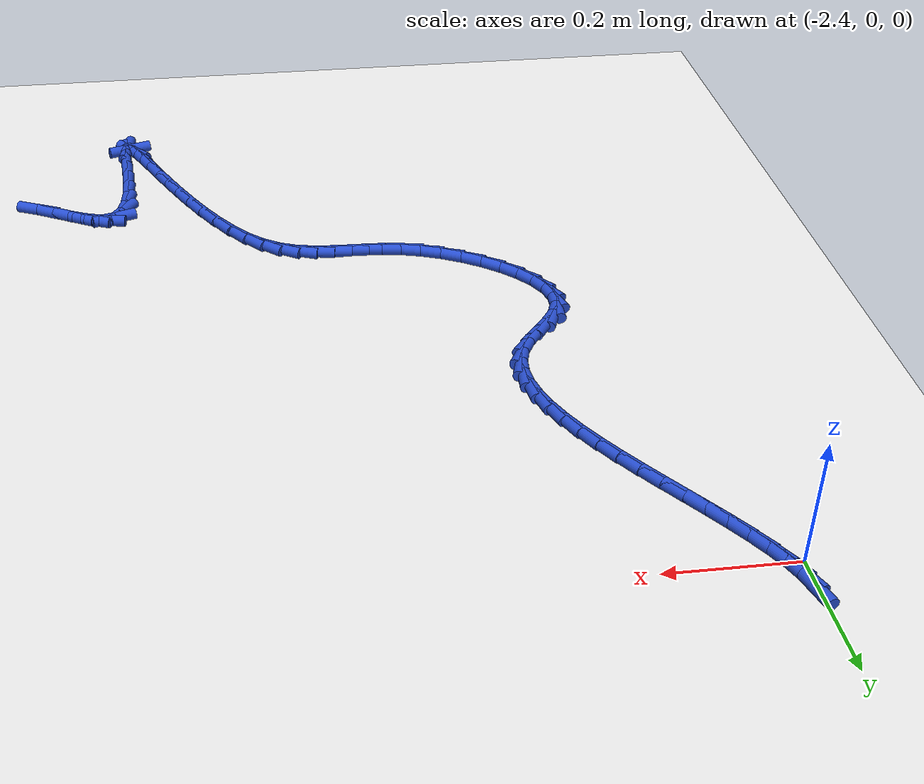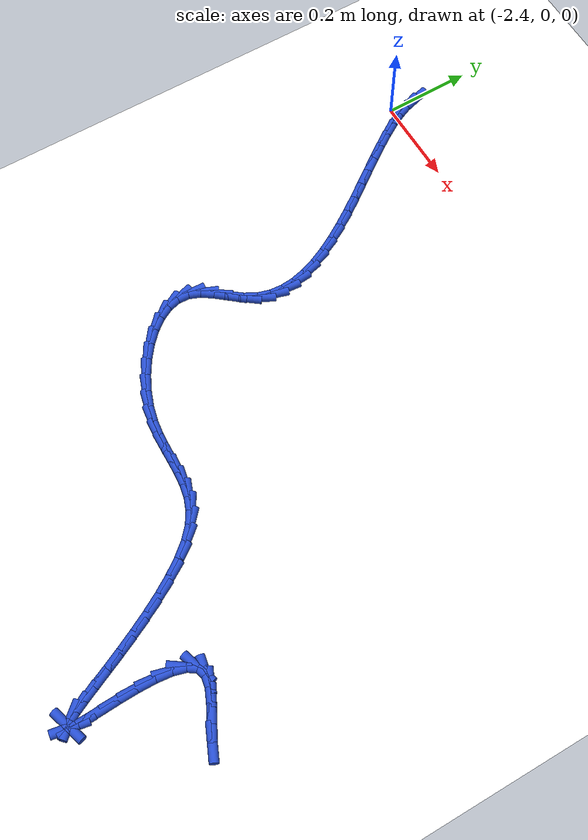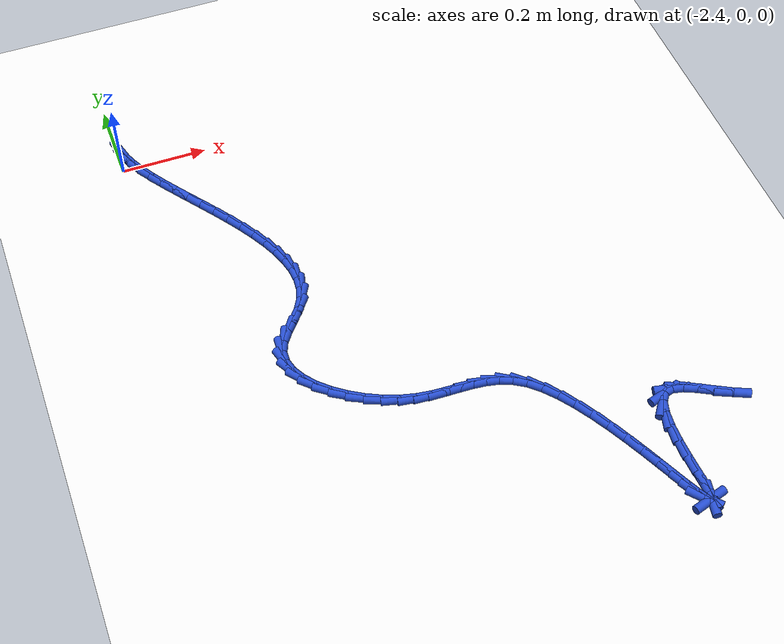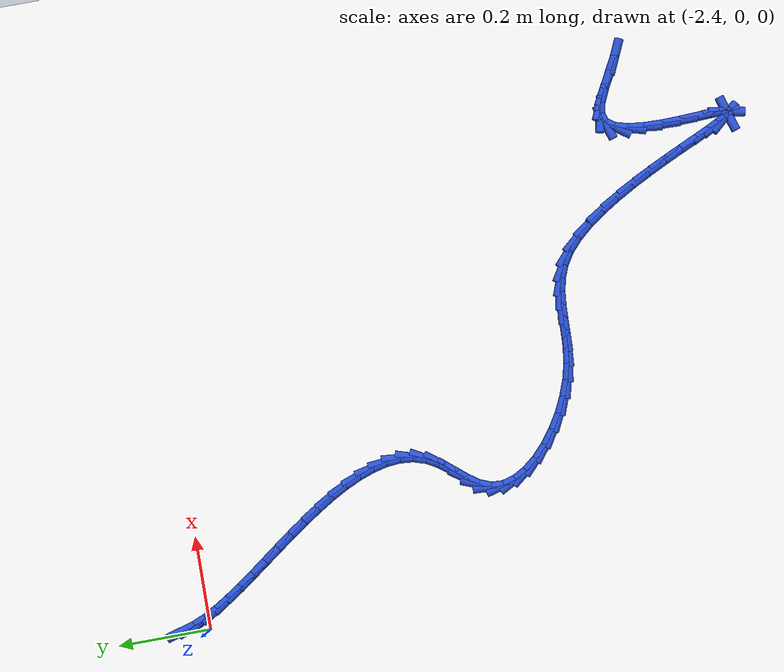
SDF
<sdf version="1.6">
 <world name="default">
  <model name="ground_plane">
   <static>1</static>
   <link name="link">
    <collision name="collision">
     <geometry><plane><normal>0 0 1</normal><size>100 100</size></plane></geometry>
     <surface><friction><ode><mu>100</mu><mu2>50</mu2></ode></friction></surface>
    </collision>
    <visual name="visual">
     <cast_shadows>0</cast_shadows>
     <geometry><plane><normal>0 0 1</normal><size>100 100</size></plane></geometry>
     <material>
      <script><uri>file://media/materials/scripts/gazebo.material</uri><name>Gazebo/WhiteGlow</name></script>
     </material>
    </visual>
   </link>
  </model>
  <model name="line">
   <link name="link_144">
    <pose>-2.3911533033331653 0.0549374878487624 0.01 0 1.57 -1.2976757086844497</pose>
    <collision name="collision">
     <geometry><cylinder><radius>0.01</radius><length>0.08</length></cylinder></geometry>
    </collision>
    <visual name="visual">
     <material>
      <script><name>Gazebo/Blue</name><uri>file://media/materials/scripts/gazebo.material</uri></script>
     </material>
     <geometry><cylinder><radius>0.01</radius><length>0.08</length></cylinder></geometry>
    </visual>
   </link>
   <link name="link_145">
    <pose>-2.384523384127648 0.03126940700891214 0.01 0 1.57 -1.1690420915968036</pose>
    <collision name="collision">
     <geometry><cylinder><radius>0.01</radius><length>0.08</length></cylinder></geometry>
    </collision>
    <visual name="visual">
     <material>
      <script><name>Gazebo/Blue</name><uri>file://media/materials/scripts/gazebo.material</uri></script>
     </material>
     <geometry><cylinder><radius>0.01</radius><length>0.08</length></cylinder></geometry>
    </visual>
   </link>
   <link name="link_146">
    <pose>-2.3737386884405693 0.005885444029727582 0.01 0 1.57 -1.0810618310119129</pose>
    <collision name="collision">
     <geometry><cylinder><radius>0.01</radius><length>0.08</length></cylinder></geometry>
    </collision>
    <visual name="visual">
     <material>
      <script><name>Gazebo/Blue</name><uri>file://media/materials/scripts/gazebo.material</uri></script>
     </material>
     <geometry><cylinder><radius>0.01</radius><length>0.08</length></cylinder></geometry>
    </visual>
   </link>
   <link name="link_147">
    <pose>-2.359386714228761 -0.021038954880729318 0.01 0 1.57 -1.0211205381412205</pose>
    <collision name="collision">
     <geometry><cylinder><radius>0.01</radius><length>0.08</length></cylinder></geometry>
    </collision>
    <visual name="visual">
     <material>
      <script><name>Gazebo/Blue</name><uri>file://media/materials/scripts/gazebo.material</uri></script>
     </material>
     <geometry><cylinder><radius>0.01</radius><length>0.08</length></cylinder></geometry>
    </visual>
   </link>
   <link name="link_148">
    <pose>-2.342054959449052 -0.04932834351439891 0.01 0 1.57 -0.9811184064394096</pose>
    <collision name="collision">
     <geometry><cylinder><radius>0.01</radius><length>0.08</length></cylinder></geometry>
    </collision>
    <visual name="visual">
     <material>
      <script><name>Gazebo/Blue</name><uri>file://media/materials/scripts/gazebo.material</uri></script>
     </material>
     <geometry><cylinder><radius>0.01</radius><length>0.08</length></cylinder></geometry>
    </visual>
   </link>
   <link name="link_149">
    <pose>-2.322330922058274 -0.07880727566322082 0.01 0 1.57 -0.9560385909145989</pose>
    <collision name="collision">
     <geometry><cylinder><radius>0.01</radius><length>0.08</length></cylinder></geometry>
    </collision>
    <visual name="visual">
     <material>
      <script><name>Gazebo/Blue</name><uri>file://media/materials/scripts/gazebo.material</uri></script>
     </material>
     <geometry><cylinder><radius>0.01</radius><length>0.08</length></cylinder></geometry>
    </visual>
   </link>
   <link name="link_150">
    <pose>-2.300802100013259 -0.1093003051191346 0.01 0 1.57 -0.9428474263628316</pose>
    <collision name="collision">
     <geometry><cylinder><radius>0.01</radius><length>0.08</length></cylinder></geometry>
    </collision>
    <visual name="visual">
     <material>
      <script><name>Gazebo/Blue</name><uri>file://media/materials/scripts/gazebo.material</uri></script>
     </material>
     <geometry><cylinder><radius>0.01</radius><length>0.08</length></cylinder></geometry>
    </visual>
   </link>
   <link name="link_151">
    <pose>-2.278055991270837 -0.14063198567407986 0.01 0 1.57 -0.9398184189420673</pose>
    <collision name="collision">
     <geometry><cylinder><radius>0.01</radius><length>0.08</length></cylinder></geometry>
    </collision>
    <visual name="visual">
     <material>
      <script><name>Gazebo/Blue</name><uri>file://media/materials/scripts/gazebo.material</uri></script>
     </material>
     <geometry><cylinder><radius>0.01</radius><length>0.08</length></cylinder></geometry>
    </visual>
   </link>
   <link name="link_152">
    <pose>-2.254680093787839 -0.1726268711199961 0.01 0 1.57 -0.9461514220851758</pose>
    <collision name="collision">
     <geometry><cylinder><radius>0.01</radius><length>0.08</length></cylinder></geometry>
    </collision>
    <visual name="visual">
     <material>
      <script><name>Gazebo/Blue</name><uri>file://media/materials/scripts/gazebo.material</uri></script>
     </material>
     <geometry><cylinder><radius>0.01</radius><length>0.08</length></cylinder></geometry>
    </visual>
   </link>
   <link name="link_153">
    <pose>-2.2312619055210967 -0.2051095152488231 0.01 0 1.57 -0.9617809794055118</pose>
    <collision name="collision">
     <geometry><cylinder><radius>0.01</radius><length>0.08</length></cylinder></geometry>
    </collision>
    <visual name="visual">
     <material>
      <script><name>Gazebo/Blue</name><uri>file://media/materials/scripts/gazebo.material</uri></script>
     </material>
     <geometry><cylinder><radius>0.01</radius><length>0.08</length></cylinder></geometry>
    </visual>
   </link>
   <link name="link_154">
    <pose>-2.2083889244274393 -0.23790447185250024 0.01 0 1.57 -0.9873117964499144</pose>
    <collision name="collision">
     <geometry><cylinder><radius>0.01</radius><length>0.08</length></cylinder></geometry>
    </collision>
    <visual name="visual">
     <material>
      <script><name>Gazebo/Blue</name><uri>file://media/materials/scripts/gazebo.material</uri></script>
     </material>
     <geometry><cylinder><radius>0.01</radius><length>0.08</length></cylinder></geometry>
    </visual>
   </link>
   <link name="link_155">
    <pose>-2.1866486484636996 -0.27083629472296833 0.01 0 1.57 -1.024049657740154</pose>
    <collision name="collision">
     <geometry><cylinder><radius>0.01</radius><length>0.08</length></cylinder></geometry>
    </collision>
    <visual name="visual">
     <material>
      <script><name>Gazebo/Blue</name><uri>file://media/materials/scripts/gazebo.material</uri></script>
     </material>
     <geometry><cylinder><radius>0.01</radius><length>0.08</length></cylinder></geometry>
    </visual>
   </link>
   <link name="link_156">
    <pose>-2.1666285755867087 -0.3037295376521648 0.01 0 1.57 -1.0741103013101971</pose>
    <collision name="collision">
     <geometry><cylinder><radius>0.01</radius><length>0.08</length></cylinder></geometry>
    </collision>
    <visual name="visual">
     <material>
      <script><name>Gazebo/Blue</name><uri>file://media/materials/scripts/gazebo.material</uri></script>
     </material>
     <geometry><cylinder><radius>0.01</radius><length>0.08</length></cylinder></geometry>
    </visual>
   </link>
   <link name="link_157">
    <pose>-2.1489162037532967 -0.3364087544320302 0.01 0 1.57 -1.1405809717424236</pose>
    <collision name="collision">
     <geometry><cylinder><radius>0.01</radius><length>0.08</length></cylinder></geometry>
    </collision>
    <visual name="visual">
     <material>
      <script><name>Gazebo/Blue</name><uri>file://media/materials/scripts/gazebo.material</uri></script>
     </material>
     <geometry><cylinder><radius>0.01</radius><length>0.08</length></cylinder></geometry>
    </visual>
   </link>
   <link name="link_158">
    <pose>-2.1340990309202943 -0.3686984988545042 0.01 0 1.57 -1.2276555120837809</pose>
    <collision name="collision">
     <geometry><cylinder><radius>0.01</radius><length>0.08</length></cylinder></geometry>
    </collision>
    <visual name="visual">
     <material>
      <script><name>Gazebo/Blue</name><uri>file://media/materials/scripts/gazebo.material</uri></script>
     </material>
     <geometry><cylinder><radius>0.01</radius><length>0.08</length></cylinder></geometry>
    </visual>
   </link>
   <link name="link_159">
    <pose>-2.1227645550445335 -0.4004233247115264 0.01 0 1.57 -1.3405064396023725</pose>
    <collision name="collision">
     <geometry><cylinder><radius>0.01</radius><length>0.08</length></cylinder></geometry>
    </collision>
    <visual name="visual">
     <material>
      <script><name>Gazebo/Blue</name><uri>file://media/materials/scripts/gazebo.material</uri></script>
     </material>
     <geometry><cylinder><radius>0.01</radius><length>0.08</length></cylinder></geometry>
    </visual>
   </link>
   <link name="link_160">
    <pose>-2.115500274082845 -0.4314077857950364 0.01 0 1.57 -1.4843246015087603</pose>
    <collision name="collision">
     <geometry><cylinder><radius>0.01</radius><length>0.08</length></cylinder></geometry>
    </collision>
    <visual name="visual">
     <material>
      <script><name>Gazebo/Blue</name><uri>file://media/materials/scripts/gazebo.material</uri></script>
     </material>
     <geometry><cylinder><radius>0.01</radius><length>0.08</length></cylinder></geometry>
    </visual>
   </link>
   <link name="link_161">
    <pose>-2.1128936859920593 -0.46147643589697385 0.01 0 1.57 1.4799894617639735</pose>
    <collision name="collision">
     <geometry><cylinder><radius>0.01</radius><length>0.08</length></cylinder></geometry>
    </collision>
    <visual name="visual">
     <material>
      <script><name>Gazebo/Blue</name><uri>file://media/materials/scripts/gazebo.material</uri></script>
     </material>
     <geometry><cylinder><radius>0.01</radius><length>0.08</length></cylinder></geometry>
    </visual>
   </link>
   <link name="link_162">
    <pose>-2.1155322887290073 -0.4904538288092781 0.01 0 1.57 1.2741139992608495</pose>
    <collision name="collision">
     <geometry><cylinder><radius>0.01</radius><length>0.08</length></cylinder></geometry>
    </collision>
    <visual name="visual">
     <material>
      <script><name>Gazebo/Blue</name><uri>file://media/materials/scripts/gazebo.material</uri></script>
     </material>
     <geometry><cylinder><radius>0.01</radius><length>0.08</length></cylinder></geometry>
    </visual>
   </link>
   <link name="link_163">
    <pose>-2.1240035802505206 -0.5181645183238891 0.01 0 1.57 1.0577666806071828</pose>
    <collision name="collision">
     <geometry><cylinder><radius>0.01</radius><length>0.08</length></cylinder></geometry>
    </collision>
    <visual name="visual">
     <material>
      <script><name>Gazebo/Blue</name><uri>file://media/materials/scripts/gazebo.material</uri></script>
     </material>
     <geometry><cylinder><radius>0.01</radius><length>0.08</length></cylinder></geometry>
    </visual>
   </link>
   <link name="link_164">
    <pose>-2.1388104205066134 -0.5444483968565179 0.01 0 1.57 0.9094526419377709</pose>
    <collision name="collision">
     <geometry><cylinder><radius>0.01</radius><length>0.08</length></cylinder></geometry>
    </collision>
    <visual name="visual">
     <material>
      <script><name>Gazebo/Blue</name><uri>file://media/materials/scripts/gazebo.material</uri></script>
     </material>
     <geometry><cylinder><radius>0.01</radius><length>0.08</length></cylinder></geometry>
    </visual>
   </link>
   <link name="link_165">
    <pose>-2.158330778536468 -0.5695304427134964 0.01 0 1.57 0.8770536046487104</pose>
    <collision name="collision">
     <geometry><cylinder><radius>0.01</radius><length>0.08</length></cylinder></geometry>
    </collision>
    <visual name="visual">
     <material>
      <script><name>Gazebo/Blue</name><uri>file://media/materials/scripts/gazebo.material</uri></script>
     </material>
     <geometry><cylinder><radius>0.01</radius><length>0.08</length></cylinder></geometry>
    </visual>
   </link>
   <link name="link_166">
    <pose>-2.1787137380002526 -0.5940395666133589 0.01 0 1.57 0.9578832909842352</pose>
    <collision name="collision">
     <geometry><cylinder><radius>0.01</radius><length>0.08</length></cylinder></geometry>
    </collision>
    <visual name="visual">
     <material>
      <script><name>Gazebo/Blue</name><uri>file://media/materials/scripts/gazebo.material</uri></script>
     </material>
     <geometry><cylinder><radius>0.01</radius><length>0.08</length></cylinder></geometry>
    </visual>
   </link>
   <link name="link_167">
    <pose>-2.196002930770997 -0.6186237899005832 0.01 0 1.57 1.1852130195033388</pose>
    <collision name="collision">
     <geometry><cylinder><radius>0.01</radius><length>0.08</length></cylinder></geometry>
    </collision>
    <visual name="visual">
     <material>
      <script><name>Gazebo/Blue</name><uri>file://media/materials/scripts/gazebo.material</uri></script>
     </material>
     <geometry><cylinder><radius>0.01</radius><length>0.08</length></cylinder></geometry>
    </visual>
   </link>
   <link name="link_168">
    <pose>-2.2062722198624978 -0.6439237575356631 0.01 0 1.57 1.5257923270408402</pose>
    <collision name="collision">
     <geometry><cylinder><radius>0.01</radius><length>0.08</length></cylinder></geometry>
    </collision>
    <visual name="visual">
     <material>
      <script><name>Gazebo/Blue</name><uri>file://media/materials/scripts/gazebo.material</uri></script>
     </material>
     <geometry><cylinder><radius>0.01</radius><length>0.08</length></cylinder></geometry>
    </visual>
   </link>
   <link name="link_169">
    <pose>-2.2074522698729586 -0.6701270557747904 0.01 0 1.57 -1.3106873451066203</pose>
    <collision name="collision">
     <geometry><cylinder><radius>0.01</radius><length>0.08</length></cylinder></geometry>
    </collision>
    <visual name="visual">
     <material>
      <script><name>Gazebo/Blue</name><uri>file://media/materials/scripts/gazebo.material</uri></script>
     </material>
     <geometry><cylinder><radius>0.01</radius><length>0.08</length></cylinder></geometry>
    </visual>
   </link>
   <link name="link_170">
    <pose>-2.200376749668534 -0.6967129392121899 0.01 0 1.57 -1.0757722131199412</pose>
    <collision name="collision">
     <geometry><cylinder><radius>0.01</radius><length>0.08</length></cylinder></geometry>
    </collision>
    <visual name="visual">
     <material>
      <script><name>Gazebo/Blue</name><uri>file://media/materials/scripts/gazebo.material</uri></script>
     </material>
     <geometry><cylinder><radius>0.01</radius><length>0.08</length></cylinder></geometry>
    </visual>
   </link>
   <link name="link_171">
    <pose>-2.186131989335265 -0.72309901322449 0.01 0 1.57 -0.8997678208608815</pose>
    <collision name="collision">
     <geometry><cylinder><radius>0.01</radius><length>0.08</length></cylinder></geometry>
    </collision>
    <visual name="visual">
     <material>
      <script><name>Gazebo/Blue</name><uri>file://media/materials/scripts/gazebo.material</uri></script>
     </material>
     <geometry><cylinder><radius>0.01</radius><length>0.08</length></cylinder></geometry>
    </visual>
   </link>
   <link name="link_172">
    <pose>-2.1658043189591925 -0.7487028831883185 0.01 0 1.57 -0.7635109821167383</pose>
    <collision name="collision">
     <geometry><cylinder><radius>0.01</radius><length>0.08</length></cylinder></geometry>
    </collision>
    <visual name="visual">
     <material>
      <script><name>Gazebo/Blue</name><uri>file://media/materials/scripts/gazebo.material</uri></script>
     </material>
     <geometry><cylinder><radius>0.01</radius><length>0.08</length></cylinder></geometry>
    </visual>
   </link>
   <link name="link_173">
    <pose>-2.140480068626358 -0.7729421544803053 0.01 0 1.57 -0.651474242850275</pose>
    <collision name="collision">
     <geometry><cylinder><radius>0.01</radius><length>0.08</length></cylinder></geometry>
    </collision>
    <visual name="visual">
     <material>
      <script><name>Gazebo/Blue</name><uri>file://media/materials/scripts/gazebo.material</uri></script>
     </material>
     <geometry><cylinder><radius>0.01</radius><length>0.08</length></cylinder></geometry>
    </visual>
   </link>
   <link name="link_174">
    <pose>-2.1112455684228033 -0.7952344324770765 0.01 0 1.57 -0.5524381453813891</pose>
    <collision name="collision">
     <geometry><cylinder><radius>0.01</radius><length>0.08</length></cylinder></geometry>
    </collision>
    <visual name="visual">
     <material>
      <script><name>Gazebo/Blue</name><uri>file://media/materials/scripts/gazebo.material</uri></script>
     </material>
     <geometry><cylinder><radius>0.01</radius><length>0.08</length></cylinder></geometry>
    </visual>
   </link>
   <link name="link_175">
    <pose>-2.0791871484345714 -0.8149973225552622 0.01 0 1.57 -0.4577861342736469</pose>
    <collision name="collision">
     <geometry><cylinder><radius>0.01</radius><length>0.08</length></cylinder></geometry>
    </collision>
    <visual name="visual">
     <material>
      <script><name>Gazebo/Blue</name><uri>file://media/materials/scripts/gazebo.material</uri></script>
     </material>
     <geometry><cylinder><radius>0.01</radius><length>0.08</length></cylinder></geometry>
    </visual>
   </link>
   <link name="link_176">
    <pose>-2.0453911387477017 -0.8316484300914899 0.01 0 1.57 -0.35976808167637253</pose>
    <collision name="collision">
     <geometry><cylinder><radius>0.01</radius><length>0.08</length></cylinder></geometry>
    </collision>
    <visual name="visual">
     <material>
      <script><name>Gazebo/Blue</name><uri>file://media/materials/scripts/gazebo.material</uri></script>
     </material>
     <geometry><cylinder><radius>0.01</radius><length>0.08</length></cylinder></geometry>
    </visual>
   </link>
   <link name="link_177">
    <pose>-2.0109438694482367 -0.8446053604623889 0.01 0 1.57 -0.250427851028408</pose>
    <collision name="collision">
     <geometry><cylinder><radius>0.01</radius><length>0.08</length></cylinder></geometry>
    </collision>
    <visual name="visual">
     <material>
      <script><name>Gazebo/Blue</name><uri>file://media/materials/scripts/gazebo.material</uri></script>
     </material>
     <geometry><cylinder><radius>0.01</radius><length>0.08</length></cylinder></geometry>
    </visual>
   </link>
   <link name="link_178">
    <pose>-1.9769187159979222 -0.8533089170608681 0.01 0 1.57 -0.14269767446285236</pose>
    <collision name="collision">
     <geometry><cylinder><radius>0.01</radius><length>0.08</length></cylinder></geometry>
    </collision>
    <visual name="visual">
     <material>
      <script><name>Gazebo/Blue</name><uri>file://media/materials/scripts/gazebo.material</uri></script>
     </material>
     <geometry><cylinder><radius>0.01</radius><length>0.08</length></cylinder></geometry>
    </visual>
   </link>
   <link name="link_179">
    <pose>-1.94391384541857 -0.858050865289631 0.01 0 1.57 -0.06708045261166913</pose>
    <collision name="collision">
     <geometry><cylinder><radius>0.01</radius><length>0.08</length></cylinder></geometry>
    </collision>
    <visual name="visual">
     <material>
      <script><name>Gazebo/Blue</name><uri>file://media/materials/scripts/gazebo.material</uri></script>
     </material>
     <geometry><cylinder><radius>0.01</radius><length>0.08</length></cylinder></geometry>
    </visual>
   </link>
   <link name="link_180">
    <pose>-1.9119260586056217 -0.8601998447912157 0.01 0 1.57 -0.03203471679415753</pose>
    <collision name="collision">
     <geometry><cylinder><radius>0.01</radius><length>0.08</length></cylinder></geometry>
    </collision>
    <visual name="visual">
     <material>
      <script><name>Gazebo/Blue</name><uri>file://media/materials/scripts/gazebo.material</uri></script>
     </material>
     <geometry><cylinder><radius>0.01</radius><length>0.08</length></cylinder></geometry>
    </visual>
   </link>
   <link name="link_181">
    <pose>-1.8809135310029612 -0.8611936623127912 0.01 0 1.57 -0.04241141390011153</pose>
    <collision name="collision">
     <geometry><cylinder><radius>0.01</radius><length>0.08</length></cylinder></geometry>
    </collision>
    <visual name="visual">
     <material>
      <script><name>Gazebo/Blue</name><uri>file://media/materials/scripts/gazebo.material</uri></script>
     </material>
     <geometry><cylinder><radius>0.01</radius><length>0.08</length></cylinder></geometry>
    </visual>
   </link>
   <link name="link_182">
    <pose>-1.8508344380544752 -0.8624701246015261 0.01 0 1.57 -0.10231947736582603</pose>
    <collision name="collision">
     <geometry><cylinder><radius>0.01</radius><length>0.08</length></cylinder></geometry>
    </collision>
    <visual name="visual">
     <material>
      <script><name>Gazebo/Blue</name><uri>file://media/materials/scripts/gazebo.material</uri></script>
     </material>
     <geometry><cylinder><radius>0.01</radius><length>0.08</length></cylinder></geometry>
    </visual>
   </link>
   <link name="link_183">
    <pose>-1.821646955204047 -0.8654670384045897 0.01 0 1.57 -0.21388556042273882</pose>
    <collision name="collision">
     <geometry><cylinder><radius>0.01</radius><length>0.08</length></cylinder></geometry>
    </collision>
    <visual name="visual">
     <material>
      <script><name>Gazebo/Blue</name><uri>file://media/materials/scripts/gazebo.material</uri></script>
     </material>
     <geometry><cylinder><radius>0.01</radius><length>0.08</length></cylinder></geometry>
    </visual>
   </link>
   <link name="link_184">
    <pose>-1.7933092578955618 -0.871622210469151 0.01 0 1.57 -0.3723175698020925</pose>
    <collision name="collision">
     <geometry><cylinder><radius>0.01</radius><length>0.08</length></cylinder></geometry>
    </collision>
    <visual name="visual">
     <material>
      <script><name>Gazebo/Blue</name><uri>file://media/materials/scripts/gazebo.material</uri></script>
     </material>
     <geometry><cylinder><radius>0.01</radius><length>0.08</length></cylinder></geometry>
    </visual>
   </link>
   <link name="link_185">
    <pose>-1.7657795215729037 -0.8823734475423789 0.01 0 1.57 -0.5601269322864687</pose>
    <collision name="collision">
     <geometry><cylinder><radius>0.01</radius><length>0.08</length></cylinder></geometry>
    </collision>
    <visual name="visual">
     <material>
      <script><name>Gazebo/Blue</name><uri>file://media/materials/scripts/gazebo.material</uri></script>
     </material>
     <geometry><cylinder><radius>0.01</radius><length>0.08</length></cylinder></geometry>
    </visual>
   </link>
   <link name="link_186">
    <pose>-1.7390159828031229 -0.8991575685703207 0.01 0 1.57 -0.7371193710401313</pose>
    <collision name="collision">
     <geometry><cylinder><radius>0.01</radius><length>0.08</length></cylinder></geometry>
    </collision>
    <visual name="visual">
     <material>
      <script><name>Gazebo/Blue</name><uri>file://media/materials/scripts/gazebo.material</uri></script>
     </material>
     <geometry><cylinder><radius>0.01</radius><length>0.08</length></cylinder></geometry>
    </visual>
   </link>
   <link name="link_187">
    <pose>-1.713017196491453 -0.9227598146630664 0.01 0 1.57 -0.8641140978077944</pose>
    <collision name="collision">
     <geometry><cylinder><radius>0.01</radius><length>0.08</length></cylinder></geometry>
    </collision>
    <visual name="visual">
     <material>
      <script><name>Gazebo/Blue</name><uri>file://media/materials/scripts/gazebo.material</uri></script>
     </material>
     <geometry><cylinder><radius>0.01</radius><length>0.08</length></cylinder></geometry>
    </visual>
   </link>
   <link name="link_188">
    <pose>-1.6878916689294852 -0.9521885211947368 0.01 0 1.57 -0.9531717101822088</pose>
    <collision name="collision">
     <geometry><cylinder><radius>0.01</radius><length>0.08</length></cylinder></geometry>
    </collision>
    <visual name="visual">
     <material>
      <script><name>Gazebo/Blue</name><uri>file://media/materials/scripts/gazebo.material</uri></script>
     </material>
     <geometry><cylinder><radius>0.01</radius><length>0.08</length></cylinder></geometry>
    </visual>
   </link>
   <link name="link_189">
    <pose>-1.663766475797294 -0.9861519267966838 0.01 0 1.57 -1.017163658331088</pose>
    <collision name="collision">
     <geometry><cylinder><radius>0.01</radius><length>0.08</length></cylinder></geometry>
    </collision>
    <visual name="visual">
     <material>
      <script><name>Gazebo/Blue</name><uri>file://media/materials/scripts/gazebo.material</uri></script>
     </material>
     <geometry><cylinder><radius>0.01</radius><length>0.08</length></cylinder></geometry>
    </visual>
   </link>
   <link name="link_190">
    <pose>-1.640768692774953 -1.023358270100261 0.01 0 1.57 -1.0639101751134594</pose>
    <collision name="collision">
     <geometry><cylinder><radius>0.01</radius><length>0.08</length></cylinder></geometry>
    </collision>
    <visual name="visual">
     <material>
      <script><name>Gazebo/Blue</name><uri>file://media/materials/scripts/gazebo.material</uri></script>
     </material>
     <geometry><cylinder><radius>0.01</radius><length>0.08</length></cylinder></geometry>
    </visual>
   </link>
   <link name="link_191">
    <pose>-1.619025395542538 -1.062515789736818 0.01 0 1.57 -1.0980831984649064</pose>
    <collision name="collision">
     <geometry><cylinder><radius>0.01</radius><length>0.08</length></cylinder></geometry>
    </collision>
    <visual name="visual">
     <material>
      <script><name>Gazebo/Blue</name><uri>file://media/materials/scripts/gazebo.material</uri></script>
     </material>
     <geometry><cylinder><radius>0.01</radius><length>0.08</length></cylinder></geometry>
    </visual>
   </link>
   <link name="link_192">
    <pose>-1.5986636597801225 -1.1023327243377083 0.01 0 1.57 -1.1223538447818755</pose>
    <collision name="collision">
     <geometry><cylinder><radius>0.01</radius><length>0.08</length></cylinder></geometry>
    </collision>
    <visual name="visual">
     <material>
      <script><name>Gazebo/Blue</name><uri>file://media/materials/scripts/gazebo.material</uri></script>
     </material>
     <geometry><cylinder><radius>0.01</radius><length>0.08</length></cylinder></geometry>
    </visual>
   </link>
   <link name="link_193">
    <pose>-1.5798105611677813 -1.141517312534284 0.01 0 1.57 -1.1379408111600129</pose>
    <collision name="collision">
     <geometry><cylinder><radius>0.01</radius><length>0.08</length></cylinder></geometry>
    </collision>
    <visual name="visual">
     <material>
      <script><name>Gazebo/Blue</name><uri>file://media/materials/scripts/gazebo.material</uri></script>
     </material>
     <geometry><cylinder><radius>0.01</radius><length>0.08</length></cylinder></geometry>
    </visual>
   </link>
   <link name="link_194">
    <pose>-1.5625931753855886 -1.1787777929578975 0.01 0 1.57 -1.144661317670637</pose>
    <collision name="collision">
     <geometry><cylinder><radius>0.01</radius><length>0.08</length></cylinder></geometry>
    </collision>
    <visual name="visual">
     <material>
      <script><name>Gazebo/Blue</name><uri>file://media/materials/scripts/gazebo.material</uri></script>
     </material>
     <geometry><cylinder><radius>0.01</radius><length>0.08</length></cylinder></geometry>
    </visual>
   </link>
   <link name="link_195">
    <pose>-1.547138578113619 -1.212822404239901 0.01 0 1.57 -1.140280282812853</pose>
    <collision name="collision">
     <geometry><cylinder><radius>0.01</radius><length>0.08</length></cylinder></geometry>
    </collision>
    <visual name="visual">
     <material>
      <script><name>Gazebo/Blue</name><uri>file://media/materials/scripts/gazebo.material</uri></script>
     </material>
     <geometry><cylinder><radius>0.01</radius><length>0.08</length></cylinder></geometry>
    </visual>
   </link>
   <link name="link_196">
    <pose>-1.5335738450319467 -1.2423593850116463 0.01 0 1.57 -1.118025451753447</pose>
    <collision name="collision">
     <geometry><cylinder><radius>0.01</radius><length>0.08</length></cylinder></geometry>
    </collision>
    <visual name="visual">
     <material>
      <script><name>Gazebo/Blue</name><uri>file://media/materials/scripts/gazebo.material</uri></script>
     </material>
     <geometry><cylinder><radius>0.01</radius><length>0.08</length></cylinder></geometry>
    </visual>
   </link>
   <link name="link_197">
    <pose>-1.5220260518206454 -1.266096973904486 0.01 0 1.57 -1.056576202068592</pose>
    <collision name="collision">
     <geometry><cylinder><radius>0.01</radius><length>0.08</length></cylinder></geometry>
    </collision>
    <visual name="visual">
     <material>
      <script><name>Gazebo/Blue</name><uri>file://media/materials/scripts/gazebo.material</uri></script>
     </material>
     <geometry><cylinder><radius>0.01</radius><length>0.08</length></cylinder></geometry>
    </visual>
   </link>
   <link name="link_198">
    <pose>-1.5126222741597908 -1.2827434095497723 0.01 0 1.57 -0.8587154162610852</pose>
    <collision name="collision">
     <geometry><cylinder><radius>0.01</radius><length>0.08</length></cylinder></geometry>
    </collision>
    <visual name="visual">
     <material>
      <script><name>Gazebo/Blue</name><uri>file://media/materials/scripts/gazebo.material</uri></script>
     </material>
     <geometry><cylinder><radius>0.01</radius><length>0.08</length></cylinder></geometry>
    </visual>
   </link>
   <link name="link_199">
    <pose>-1.505489587729456 -1.291006930578857 0.01 0 1.57 0.2896729384438854</pose>
    <collision name="collision">
     <geometry><cylinder><radius>0.01</radius><length>0.08</length></cylinder></geometry>
    </collision>
    <visual name="visual">
     <material>
      <script><name>Gazebo/Blue</name><uri>file://media/materials/scripts/gazebo.material</uri></script>
     </material>
     <geometry><cylinder><radius>0.01</radius><length>0.08</length></cylinder></geometry>
    </visual>
   </link>
   <link name="link_200">
    <pose>-1.5007550682097164 -1.2895957756230927 0.01 0 1.57 1.3939146701283998</pose>
    <collision name="collision">
     <geometry><cylinder><radius>0.01</radius><length>0.08</length></cylinder></geometry>
    </collision>
    <visual name="visual">
     <material>
      <script><name>Gazebo/Blue</name><uri>file://media/materials/scripts/gazebo.material</uri></script>
     </material>
     <geometry><cylinder><radius>0.01</radius><length>0.08</length></cylinder></geometry>
    </visual>
   </link>
   <link name="link_201">
    <pose>-1.4985438365756667 -1.2772252313442902 0.01 0 1.57 -1.5669981063933764</pose>
    <collision name="collision">
     <geometry><cylinder><radius>0.01</radius><length>0.08</length></cylinder></geometry>
    </collision>
    <visual name="visual">
     <material>
      <script><name>Gazebo/Blue</name><uri>file://media/materials/scripts/gazebo.material</uri></script>
     </material>
     <geometry><cylinder><radius>0.01</radius><length>0.08</length></cylinder></geometry>
    </visual>
   </link>
   <link name="link_202">
    <pose>-1.4986325566848562 -1.2538670074471236 0.01 0 1.57 -1.526065170417383</pose>
    <collision name="collision">
     <geometry><cylinder><radius>0.01</radius><length>0.08</length></cylinder></geometry>
    </collision>
    <visual name="visual">
     <material>
      <script><name>Gazebo/Blue</name><uri>file://media/materials/scripts/gazebo.material</uri></script>
     </material>
     <geometry><cylinder><radius>0.01</radius><length>0.08</length></cylinder></geometry>
    </visual>
   </link>
   <link name="link_203">
    <pose>-1.5000505668550377 -1.2221874264923214 0.01 0 1.57 -1.5254044440496342</pose>
    <collision name="collision">
     <geometry><cylinder><radius>0.01</radius><length>0.08</length></cylinder></geometry>
    </collision>
    <visual name="visual">
     <material>
      <script><name>Gazebo/Blue</name><uri>file://media/materials/scripts/gazebo.material</uri></script>
     </material>
     <geometry><cylinder><radius>0.01</radius><length>0.08</length></cylinder></geometry>
    </visual>
   </link>
   <link name="link_204">
    <pose>-1.5017305977399744 -1.1852011468588248 0.01 0 1.57 -1.5485286314565698</pose>
    <collision name="collision">
     <geometry><cylinder><radius>0.01</radius><length>0.08</length></cylinder></geometry>
    </collision>
    <visual name="visual">
     <material>
      <script><name>Gazebo/Blue</name><uri>file://media/materials/scripts/gazebo.material</uri></script>
     </material>
     <geometry><cylinder><radius>0.01</radius><length>0.08</length></cylinder></geometry>
    </visual>
   </link>
   <link name="link_205">
    <pose>-1.5026053799934305 -1.145922826925576 0.01 0 1.57 1.544924327286541</pose>
    <collision name="collision">
     <geometry><cylinder><radius>0.01</radius><length>0.08</length></cylinder></geometry>
    </collision>
    <visual name="visual">
     <material>
      <script><name>Gazebo/Blue</name><uri>file://media/materials/scripts/gazebo.material</uri></script>
     </material>
     <geometry><cylinder><radius>0.01</radius><length>0.08</length></cylinder></geometry>
    </visual>
   </link>
   <link name="link_206">
    <pose>-1.5016076442691693 -1.1073671250715158 0.01 0 1.57 1.4581874046744139</pose>
    <collision name="collision">
     <geometry><cylinder><radius>0.01</radius><length>0.08</length></cylinder></geometry>
    </collision>
    <visual name="visual">
     <material>
      <script><name>Gazebo/Blue</name><uri>file://media/materials/scripts/gazebo.material</uri></script>
     </material>
     <geometry><cylinder><radius>0.01</radius><length>0.08</length></cylinder></geometry>
    </visual>
   </link>
   <link name="link_207">
    <pose>-1.4976701212209542 -1.0725486996755862 0.01 0 1.57 1.2949497442020579</pose>
    <collision name="collision">
     <geometry><cylinder><radius>0.01</radius><length>0.08</length></cylinder></geometry>
    </collision>
    <visual name="visual">
     <material>
      <script><name>Gazebo/Blue</name><uri>file://media/materials/scripts/gazebo.material</uri></script>
     </material>
     <geometry><cylinder><radius>0.01</radius><length>0.08</length></cylinder></geometry>
    </visual>
   </link>
   <link name="link_208">
    <pose>-1.4897255415025492 -1.0444822091167278 0.01 0 1.57 0.9524472439785545</pose>
    <collision name="collision">
     <geometry><cylinder><radius>0.01</radius><length>0.08</length></cylinder></geometry>
    </collision>
    <visual name="visual">
     <material>
      <script><name>Gazebo/Blue</name><uri>file://media/materials/scripts/gazebo.material</uri></script>
     </material>
     <geometry><cylinder><radius>0.01</radius><length>0.08</length></cylinder></geometry>
    </visual>
   </link>
   <link name="link_209">
    <pose>-1.4767066357677177 -1.0261823117738844 0.01 0 1.57 0.3023285546601704</pose>
    <collision name="collision">
     <geometry><cylinder><radius>0.01</radius><length>0.08</length></cylinder></geometry>
    </collision>
    <visual name="visual">
     <material>
      <script><name>Gazebo/Blue</name><uri>file://media/materials/scripts/gazebo.material</uri></script>
     </material>
     <geometry><cylinder><radius>0.01</radius><length>0.08</length></cylinder></geometry>
    </visual>
   </link>
   <link name="link_210">
    <pose>-1.4576974821161446 -1.0202535570142184 0.01 0 1.57 -0.20754015523668087</pose>
    <collision name="collision">
     <geometry><cylinder><radius>0.01</radius><length>0.08</length></cylinder></geometry>
    </collision>
    <visual name="visual">
     <material>
      <script><name>Gazebo/Blue</name><uri>file://media/materials/scripts/gazebo.material</uri></script>
     </material>
     <geometry><cylinder><radius>0.01</radius><length>0.08</length></cylinder></geometry>
    </visual>
   </link>
   <link name="link_211">
    <pose>-1.4332186053064493 -1.0254081277616884 0.01 0 1.57 -0.4203730444950998</pose>
    <collision name="collision">
     <geometry><cylinder><radius>0.01</radius><length>0.08</length></cylinder></geometry>
    </collision>
    <visual name="visual">
     <material>
      <script><name>Gazebo/Blue</name><uri>file://media/materials/scripts/gazebo.material</uri></script>
     </material>
     <geometry><cylinder><radius>0.01</radius><length>0.08</length></cylinder></geometry>
    </visual>
   </link>
   <link name="link_212">
    <pose>-1.4045838921242824 -1.038208418981113 0.01 0 1.57 -0.49495875426427693</pose>
    <collision name="collision">
     <geometry><cylinder><radius>0.01</radius><length>0.08</length></cylinder></geometry>
    </collision>
    <visual name="visual">
     <material>
      <script><name>Gazebo/Blue</name><uri>file://media/materials/scripts/gazebo.material</uri></script>
     </material>
     <geometry><cylinder><radius>0.01</radius><length>0.08</length></cylinder></geometry>
    </visual>
   </link>
   <link name="link_213">
    <pose>-1.373115571878478 -1.0551942197458246 0.01 0 1.57 -0.49283122149336084</pose>
    <collision name="collision">
     <geometry><cylinder><radius>0.01</radius><length>0.08</length></cylinder></geometry>
    </collision>
    <visual name="visual">
     <material>
      <script><name>Gazebo/Blue</name><uri>file://media/materials/scripts/gazebo.material</uri></script>
     </material>
     <geometry><cylinder><radius>0.01</radius><length>0.08</length></cylinder></geometry>
    </visual>
   </link>
   <link name="link_214">
    <pose>-1.340135873877871 -1.0729053191291569 0.01 0 1.57 -0.4259117877744814</pose>
    <collision name="collision">
     <geometry><cylinder><radius>0.01</radius><length>0.08</length></cylinder></geometry>
    </collision>
    <visual name="visual">
     <material>
      <script><name>Gazebo/Blue</name><uri>file://media/materials/scripts/gazebo.material</uri></script>
     </material>
     <geometry><cylinder><radius>0.01</radius><length>0.08</length></cylinder></geometry>
    </visual>
   </link>
  </model>
 </world>
</sdf>
